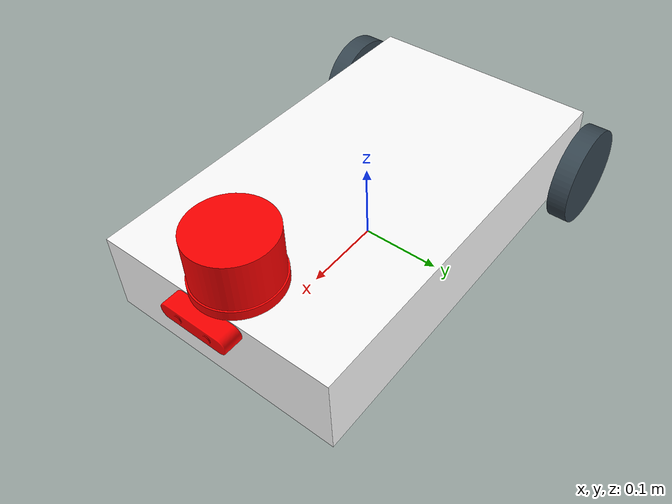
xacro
<?xml version="1.0" ?>
<robot name="roughybot" xmlns:xacro="http://www.ros.org/wiki/xacro">

    <xacro:property name="base_mass" value="1.5"/>
    <xacro:property name="base_length" value="0.508"/>
    <xacro:property name="base_width" value="0.3048"/>
    <xacro:property name="base_height" value="0.1016"/>

    <xacro:property name="wheel_mass" value="0.2"/>
    <xacro:property name="wheel_radius" value="0.0635"/>
    <xacro:property name="wheel_length" value="0.015"/>

    <xacro:property name="camera_mass" value="0.3"/>
    <xacro:property name="lidar_mass" value="0.7"/>

    <xacro:include filename="inertial_macros.urdf.xacro"/>
    <xacro:include filename="material.urdf.xacro"/>
    <xacro:include filename="gazebo_params.gazebo"/>
    <xacro:include filename="ros2_control.urdf.xacro"/>

    <xacro:arg name="add_camera" default="true"/>
    <xacro:arg name="add_lidar" default="true"/>

    <link name="base_footprint">
    </link>

    <!-- BASE LINK -->
    <joint name="base_joint" type="fixed">
        <parent link="base_footprint"/>
        <child link="base_link"/>
    </joint>

    <link name="base_link">
        <xacro:inertial_box mass="${base_mass}" x="${base_length}" y="${base_width}" z="${base_height}">
            <origin xyz="0 0 0" rpy="0 0 0"/>
        </xacro:inertial_box>

        <visual>
            <origin xyz="0 0 0" rpy="0 0 0"/>
            <geometry>
                <mesh filename="package://roughybot_description/meshes/base_link.stl" scale="0.001 0.001 0.001"/>
            </geometry>
            <material name="base_color"/>
        </visual>

        <collision>
            <origin xyz="0 0 0" rpy="0 0 0"/>
            <geometry>
                <mesh filename="package://roughybot_description/meshes/base_link.stl" scale="0.001 0.001 0.001"/>
            </geometry>
        </collision>
    </link>

    <!--RIGHT WHEEL LINK-->
    <joint name="right_wheel_joint" type="continuous">
        <origin xyz="-0.214 -0.1651 0.040" rpy="0 0 0"/>
        <parent link="base_link"/>
        <child link="right_wheel_link"/>
        <axis xyz="0 1 0" rpy="0 0 0"/>
    </joint>

    <link name="right_wheel_link">
        <xacro:inertial_cylinder mass="${wheel_mass}" length="${wheel_length}" radius="${wheel_radius}">
            <origin xyz="-0.214 -0.1651 0.040" rpy="0 0 0"/>
        </xacro:inertial_cylinder>

        <visual>
            <origin xyz="0.214 0.1651 -0.040" rpy="0 0 0"/>
            <geometry>
                <mesh filename="package://roughybot_description/meshes/right_wheel_link.stl" scale="0.001 0.001 0.001"/>
            </geometry>
            <material name="wheel_color"/>
        </visual>

        <collision>
            <origin xyz="0.214 0.1651 -0.040" rpy="0 0 0"/>
            <geometry>
                <mesh filename="package://roughybot_description/meshes/right_wheel_link.stl" scale="0.001 0.001 0.001"/>
            </geometry>
        </collision>
    </link>

    <!--LEFT WHEEL LINK-->
    <joint name="left_wheel_joint" type="continuous">
        <origin xyz="-0.214 0.1651 0.040"/>
        <parent link="base_link"/>
        <child link="left_wheel_link"/>
        <axis xyz="0 1 0" rpy="0 0 0"/>
    </joint>

    <link name="left_wheel_link">
        <xacro:inertial_cylinder mass="${wheel_mass}" length="${wheel_length}" radius="${wheel_radius}">
            <origin xyz="-0.214 0.1651 0.040" rpy="0 0 0"/>
        </xacro:inertial_cylinder>

        <visual>
            <origin xyz="0.214 -0.1651 -0.040" rpy="0 0 0"/>
            <geometry>
                <mesh filename="package://roughybot_description/meshes/left_wheel_link.stl" scale="0.001 0.001 0.001"/>
            </geometry>
            <material name="wheel_color"/>
        </visual>

        <collision>
            <origin xyz="0.214 -0.1651 -0.040" rpy="0 0 0"/>
            <geometry>
                <mesh filename="package://roughybot_description/meshes/left_wheel_link.stl" scale="0.001 0.001 0.001"/>
            </geometry>
        </collision>
    </link>

    <!-- CASTER WHEEL LINK -->
    <joint name="caster_wheel_joint" type="fixed">
        <origin xyz="0.201 0 0" rpy="0 0 0"/>
        <parent link="base_link"/>
        <child link="caster_wheel_link"/>
    </joint>

    <link name="caster_wheel_link">
        <xacro:inertial_sphere mass="0.1" radius="0.0254">
            <origin xyz="0 0 0" rpy="0 0 0"/>
        </xacro:inertial_sphere>

        <visual>
            <origin xyz="0 0 0" rpy="0 0 0"/>
            <geometry>
                <sphere radius="0.0254"/>
            </geometry>
            <material name="lidar_color"/>
        </visual>

        <collision>
            <origin xyz="0 0 0" rpy="0 0 0"/>
            <geometry>
                <sphere radius="0.0254"/>
            </geometry>
        </collision>
    </link>

    <!-- CAMERA LINK -->
    <xacro:if value="$(arg add_camera)">
        <joint name="camera_joint" type="fixed">
            <origin xyz="0.264 0 0.080" rpy="0 0 0"/>
            <parent link="base_link"/>
            <child link="camera_link"/>
        </joint>

        <link name="camera_link">
            <xacro:inertial_box mass="${camera_mass}" x="0.025" y="0.088" z="0.021">
                <origin xyz="0 0 0" rpy="0 0 1.57"/>
            </xacro:inertial_box>

            <visual>
                <origin xyz="0 0 0" rpy="0 0 1.57"/>
                <geometry>
                    <mesh filename="package://roughybot_description/meshes/camera_link.stl" scale="0.001 0.001 0.001"/>
                </geometry>
                <material name="lidar_color"/>
            </visual>

            <collision>
                <origin xyz="0 0 0" rpy="0 0 1.57"/>
                <geometry>
                    <mesh filename="package://roughybot_description/meshes/camera_link.stl" scale="0.001 0.001 0.001"/>
                </geometry>
            </collision>
        </link>

        <joint name="optical_joint" type="fixed">
            <parent link="camera_link"/>
            <child link="optical_link"/>
            <origin xyz="0 0 0" rpy="-1.57 0 -1.57"/>
        </joint>

        <link name="optical_link">
        </link>
    </xacro:if>

    <!-- LIDAR LINK -->
    <xacro:if value="$(arg add_lidar)">
        <joint name="lidar_joint" type="fixed">
            <origin xyz="0.210 0 0.1016" rpy="0 0 0"/>
            <parent link="base_link"/>
            <child link="lidar_link"/>
        </joint>

        <link name="lidar_link">
            <xacro:inertial_cylinder mass="${lidar_mass}" length="0.08" radius="0.052">
                <origin xyz="0 0 0" rpy="0 0 0"/>
            </xacro:inertial_cylinder>

            <visual>
                <origin xyz="0 0 0" rpy="0 0 0"/>
                <geometry>
                    <mesh filename="package://roughybot_description/meshes/lidar_link.stl" scale="0.001 0.001 0.001"/>
                </geometry>
                <material name="lidar_color"/>
            </visual>

            <collision>
                <origin xyz="0 0 0" rpy="0 0 0"/>
                <geometry>
                    <mesh filename="package://roughybot_description/meshes/lidar_link.stl" scale="0.001 0.001 0.001"/>
                </geometry>
            </collision>
        </link>
    </xacro:if>
</robot>

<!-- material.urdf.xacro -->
<robot xmlns:xacro="http://www.ros.org/wiki/xacro" >

    <xacro:macro name="material" params="name rgba ">
        <material name="${name}">
            <color rgba="${rgba}" />
        </material>
    </xacro:macro>

    <xacro:material name="base_color" rgba="1 1 1 1" />
    <xacro:material name="wheel_color" rgba="0.21 0.27 0.31 1" />
    <xacro:material name="caster_wheel_color" rgba="0.827 0.827 0.827 1" />
    <xacro:material name="lidar_color" rgba="1 0 0 1" />

</robot>
